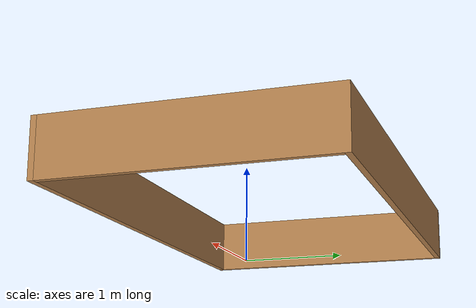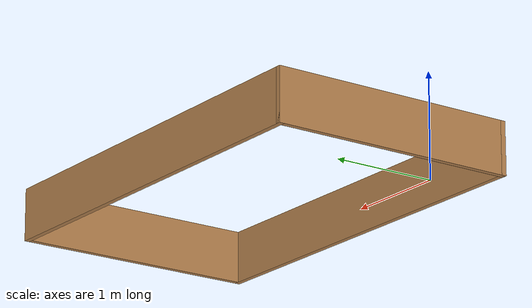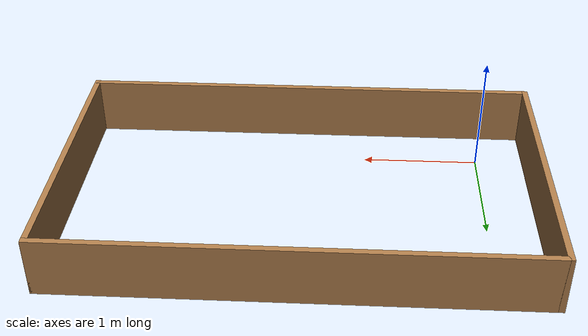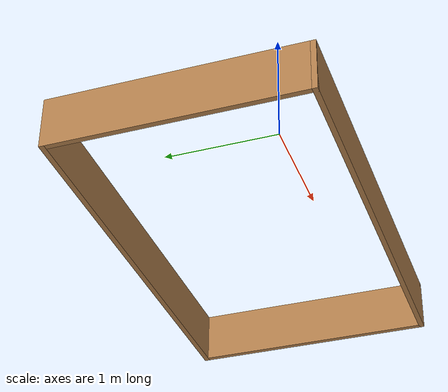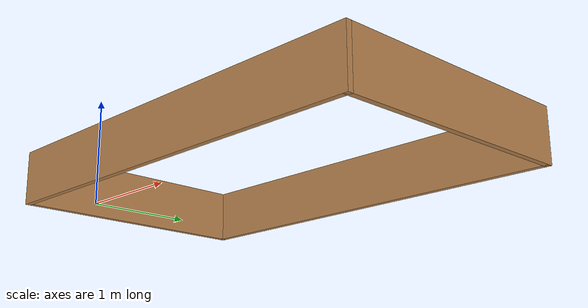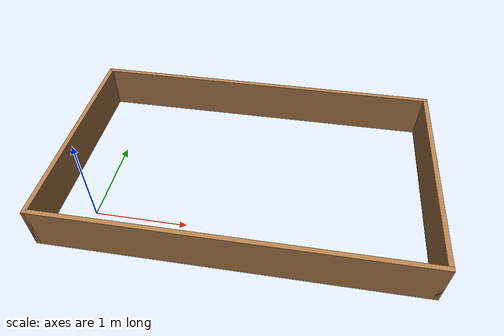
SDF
<?xml version='1.0'?>
<sdf version='1.7'>
  <model name='living_room'>
    <pose>1.53186 0.740406 0 0 -0 0</pose>
    <link name='Wall_1'>
      <collision name='Wall_1_Collision'>
        <geometry>
          <box>
            <size>4 0.05 0.5</size>
          </box>
        </geometry>
        <pose>0 0 0.25 0 -0 0</pose>
      </collision>
      <visual name='Wall_1_Visual'>
        <pose>0 0 0.25 0 -0 0</pose>
        <geometry>
          <box>
            <size>4 0.05 0.5</size>
          </box>
        </geometry>
        <material>
          <script>
            <uri>file://media/materials/scripts/gazebo.material</uri>
            <name>Gazebo/Wood</name>
          </script>
          <ambient>1 1 1 1</ambient>
        </material>
        <meta>
          <layer>0</layer>
        </meta>
      </visual>
      <pose>0 -1.175 0 0 -0 0</pose>
    </link>
    <link name='Wall_3'>
      <collision name='Wall_3_Collision'>
        <geometry>
          <box>
            <size>2.4 0.05 0.5</size>
          </box>
        </geometry>
        <pose>0 0 0.25 0 -0 0</pose>
      </collision>
      <visual name='Wall_3_Visual'>
        <pose>0 0 0.25 0 -0 0</pose>
        <geometry>
          <box>
            <size>2.4 0.05 0.5</size>
          </box>
        </geometry>
        <material>
          <script>
            <uri>file://media/materials/scripts/gazebo.material</uri>
            <name>Gazebo/Wood</name>
          </script>
          <ambient>1 1 1 1</ambient>
        </material>
        <meta>
          <layer>0</layer>
        </meta>
      </visual>
      <pose>-1.975 0 0 0 -0 1.5708</pose>
    </link>
    <link name='Wall_4'>
      <collision name='Wall_4_Collision'>
        <geometry>
          <box>
            <size>4 0.05 0.5</size>
          </box>
        </geometry>
        <pose>0 0 0.25 0 -0 0</pose>
      </collision>
      <visual name='Wall_4_Visual'>
        <pose>0 0 0.25 0 -0 0</pose>
        <geometry>
          <box>
            <size>4 0.05 0.5</size>
          </box>
        </geometry>
        <material>
          <script>
            <uri>file://media/materials/scripts/gazebo.material</uri>
            <name>Gazebo/Wood</name>
          </script>
          <ambient>1 1 1 1</ambient>
        </material>
        <meta>
          <layer>0</layer>
        </meta>
      </visual>
      <pose>0 1.175 0 0 -0 0</pose>
    </link>
    <link name='Wall_5'>
      <collision name='Wall_5_Collision'>
        <geometry>
          <box>
            <size>2.4 0.05 0.5</size>
          </box>
        </geometry>
        <pose>0 0 0.25 0 -0 0</pose>
      </collision>
      <visual name='Wall_5_Visual'>
        <pose>0 0 0.25 0 -0 0</pose>
        <geometry>
          <box>
            <size>2.4 0.05 0.5</size>
          </box>
        </geometry>
        <material>
          <script>
            <uri>file://media/materials/scripts/gazebo.material</uri>
            <name>Gazebo/Wood</name>
          </script>
          <ambient>1 1 1 1</ambient>
        </material>
        <meta>
          <layer>0</layer>
        </meta>
      </visual>
      <pose>1.975 0 0 0 -0 -1.5708</pose>
    </link>
    <static>1</static>
  </model>
</sdf>
